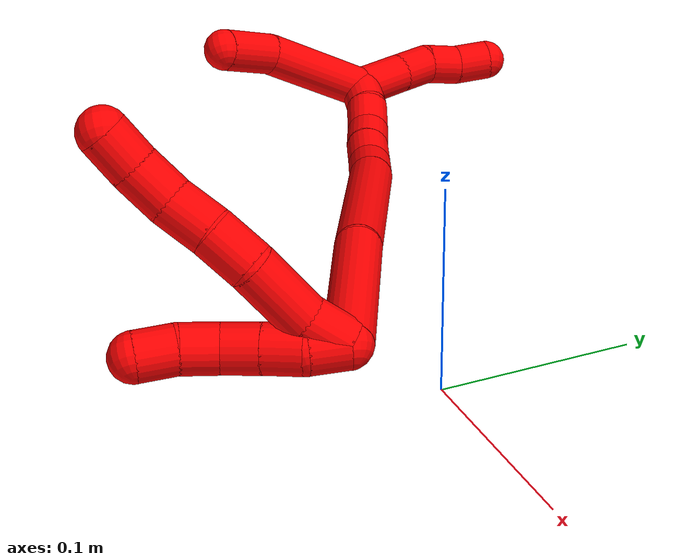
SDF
<sdf version="1.7">
 <world name="default">
  <model name="photoneo_s_sensor">
   <static>1</static>
   <pose>0 0 2 1.57079 1.57079 3.14159</pose>
   <link name="link">
    <inertial><mass>0.1</mass></inertial>
    <sensor name="sensor" type="depth">
     <update_rate>30</update_rate>
     <camera>
      <horizontal_fov>1.22</horizontal_fov>
      <image><width>1920</width><height>1200</height><format>B8G8R8</format></image>
      <clip><near>0.1</near><far>4</far></clip>
      <depth_camera><output>points</output></depth_camera>
     </camera>
     <plugin name="camera_plugin" filename="libgazebo_ros_depth_camera.so">
      <baseline>0.2</baseline>
      <alwaysOn>1</alwaysOn>
      <updateRate>0.0</updateRate>
      <cameraName>camera_ir</cameraName>
      <imageTopicName>/camera/color/image_raw</imageTopicName>
      <cameraInfoTopicName>/camera/color/camera_info</cameraInfoTopicName>
      <depthImageTopicName>/camera/depth/image_raw</depthImageTopicName>
      <depthImageCameraInfoTopicName>/camera/depth/camera_info</depthImageCameraInfoTopicName>
      <pointCloudTopicName>/camera/depth/points</pointCloudTopicName>
      <frameName>fr_optical</frameName>
      <pointCloudCutoff>0.1</pointCloudCutoff>
      <pointCloudCutoffMax>2.0</pointCloudCutoffMax>
      <distortionK1>0</distortionK1>
      <distortionK2>0</distortionK2>
      <distortionK3>0</distortionK3>
      <distortionT1>0</distortionT1>
      <distortionT2>0</distortionT2>
      <CxPrime>0</CxPrime>
      <Cx>0</Cx>
      <Cy>0</Cy>
      <focalLength>0</focalLength>
      <hackBaseline>0</hackBaseline>
     </plugin>
    </sensor>
   </link>
  </model>
  <model name="bin">
   <static>1</static>
   <link name="bottom">
    <collision name="collision-bottom">
     <pose>0 0 -0.01 0 -0 0</pose>
     <geometry><box><size>0.8 0.6 0.02</size></box></geometry>
     <surface>
      <friction><ode><mu>100</mu><mu2>100</mu2></ode></friction>
      <contact><collide_bitmask>65535</collide_bitmask></contact>
     </surface>
    </collision>
   </link>
   <link name="west_wall">
    <collision name="collision-west_wall">
     <pose>-0.41 0 0.1 0 -0 0</pose>
     <geometry><box><size>0.02 0.6 0.2</size></box></geometry>
     <surface>
      <friction><ode><mu>100</mu><mu2>100</mu2></ode></friction>
      <contact><collide_bitmask>65535</collide_bitmask></contact>
     </surface>
    </collision>
   </link>
   <link name="east_wall">
    <collision name="collision-east_wall">
     <pose>0.41 0 0.1 0 -0 0</pose>
     <geometry><box><size>0.02 0.6 0.2</size></box></geometry>
     <surface>
      <friction><ode><mu>100</mu><mu2>100</mu2></ode></friction>
      <contact><collide_bitmask>65535</collide_bitmask></contact>
     </surface>
    </collision>
   </link>
   <link name="south_wall">
    <collision name="collision-south_wall">
     <pose>0 -0.31 0.1 0 -0 0</pose>
     <geometry><box><size>0.8 0.02 0.2</size></box></geometry>
     <surface>
      <friction><ode><mu>100</mu><mu2>100</mu2></ode></friction>
      <contact><collide_bitmask>65535</collide_bitmask></contact>
     </surface>
    </collision>
   </link>
   <link name="north_wall">
    <collision name="collision-north_wall">
     <pose>0 0.31 0.1 0 -0 0</pose>
     <geometry><box><size>0.8 0.02 0.2</size></box></geometry>
     <surface>
      <friction><ode><mu>100</mu><mu2>100</mu2></ode></friction>
      <contact><collide_bitmask>65535</collide_bitmask></contact>
     </surface>
    </collision>
   </link>
  </model>
  <model name="2">
   <static>0</static>
   <link name="2">
    <collision name="collision-cylinder-e_1_2_8">
     <pose>0.003023 -0.009163 0.006567 0.948928 0.262021 0.135142</pose>
     <geometry><cylinder><radius>0.0125</radius><length>0.023344</length></cylinder></geometry>
     <surface>
      <friction><ode><mu>1.16</mu><mu2>1.16</mu2><slip1>0</slip1><slip2>0</slip2></ode></friction>
      <contact><ode><kp>1e+06</kp><kd>1</kd><max_vel>0</max_vel><min_depth>0.001</min_depth></ode></contact>
     </surface>
    </collision>
    <visual name="visual-cylinder-e_1_2_8">
     <pose>0.003023 -0.009163 0.006567 0.948928 0.262021 0.135142</pose>
     <geometry><cylinder><radius>0.0125</radius><length>0.023344</length></cylinder></geometry>
     <material><ambient>1 0 0 1</ambient></material>
    </visual>
    <collision name="collision-cylinder-e_2_8_9">
     <pose>0.01501 -0.029437 0.024292 0.783343 0.51749 0.217765</pose>
     <geometry><cylinder><radius>0.0125</radius><length>0.036238</length></cylinder></geometry>
     <surface>
      <friction><ode><mu>1.16</mu><mu2>1.16</mu2><slip1>0</slip1><slip2>0</slip2></ode></friction>
      <contact><ode><kp>1e+06</kp><kd>1</kd><max_vel>0</max_vel><min_depth>0.001</min_depth></ode></contact>
     </surface>
    </collision>
    <visual name="visual-cylinder-e_2_8_9">
     <pose>0.01501 -0.029437 0.024292 0.783343 0.51749 0.217765</pose>
     <geometry><cylinder><radius>0.0125</radius><length>0.036238</length></cylinder></geometry>
     <material><ambient>1 0 0 1</ambient></material>
    </visual>
    <collision name="collision-cylinder-e_3_9_10">
     <pose>0.026947 -0.048243 0.043983 0.733738 0.253192 0.097738</pose>
     <geometry><cylinder><radius>0.0125</radius><length>0.023738</length></cylinder></geometry>
     <surface>
      <friction><ode><mu>1.16</mu><mu2>1.16</mu2><slip1>0</slip1><slip2>0</slip2></ode></friction>
      <contact><ode><kp>1e+06</kp><kd>1</kd><max_vel>0</max_vel><min_depth>0.001</min_depth></ode></contact>
     </surface>
    </collision>
    <visual name="visual-cylinder-e_3_9_10">
     <pose>0.026947 -0.048243 0.043983 0.733738 0.253192 0.097738</pose>
     <geometry><cylinder><radius>0.0125</radius><length>0.023738</length></cylinder></geometry>
     <material><ambient>1 0 0 1</ambient></material>
    </visual>
    <collision name="collision-cylinder-e_4_10_11">
     <pose>0.031298 -0.063856 0.060867 0.758812 0.119209 0.047579</pose>
     <geometry><cylinder><radius>0.0125</radius><length>0.023179</length></cylinder></geometry>
     <surface>
      <friction><ode><mu>1.16</mu><mu2>1.16</mu2><slip1>0</slip1><slip2>0</slip2></ode></friction>
      <contact><ode><kp>1e+06</kp><kd>1</kd><max_vel>0</max_vel><min_depth>0.001</min_depth></ode></contact>
     </surface>
    </collision>
    <visual name="visual-cylinder-e_4_10_11">
     <pose>0.031298 -0.063856 0.060867 0.758812 0.119209 0.047579</pose>
     <geometry><cylinder><radius>0.0125</radius><length>0.023179</length></cylinder></geometry>
     <material><ambient>1 0 0 1</ambient></material>
    </visual>
    <collision name="collision-cylinder-e_5_11_12">
     <pose>0.036681 -0.078863 0.077035 0.736623 0.36272 0.141301</pose>
     <geometry><cylinder><radius>0.0125</radius><length>0.022575</length></cylinder></geometry>
     <surface>
      <friction><ode><mu>1.16</mu><mu2>1.16</mu2><slip1>0</slip1><slip2>0</slip2></ode></friction>
      <contact><ode><kp>1e+06</kp><kd>1</kd><max_vel>0</max_vel><min_depth>0.001</min_depth></ode></contact>
     </surface>
    </collision>
    <visual name="visual-cylinder-e_5_11_12">
     <pose>0.036681 -0.078863 0.077035 0.736623 0.36272 0.141301</pose>
     <geometry><cylinder><radius>0.0125</radius><length>0.022575</length></cylinder></geometry>
     <material><ambient>1 0 0 1</ambient></material>
    </visual>
    <collision name="collision-cylinder-e_6_12_6">
     <pose>0.045793 -0.091873 0.091806 0.70522 0.509822 0.191196</pose>
     <geometry><cylinder><radius>0.0125</radius><length>0.020926</length></cylinder></geometry>
     <surface>
      <friction><ode><mu>1.16</mu><mu2>1.16</mu2><slip1>0</slip1><slip2>0</slip2></ode></friction>
      <contact><ode><kp>1e+06</kp><kd>1</kd><max_vel>0</max_vel><min_depth>0.001</min_depth></ode></contact>
     </surface>
    </collision>
    <visual name="visual-cylinder-e_6_12_6">
     <pose>0.045793 -0.091873 0.091806 0.70522 0.509822 0.191196</pose>
     <geometry><cylinder><radius>0.0125</radius><length>0.020926</length></cylinder></geometry>
     <material><ambient>1 0 0 1</ambient></material>
    </visual>
    <collision name="collision-cylinder-e_1_2_13">
     <pose>-0.000358 -0.009987 0.000367 1.53408 -0.035843 -0.034551</pose>
     <geometry><cylinder><radius>0.0125</radius><length>0.02</length></cylinder></geometry>
     <surface>
      <friction><ode><mu>1.16</mu><mu2>1.16</mu2><slip1>0</slip1><slip2>0</slip2></ode></friction>
      <contact><ode><kp>1e+06</kp><kd>1</kd><max_vel>0</max_vel><min_depth>0.001</min_depth></ode></contact>
     </surface>
    </collision>
    <visual name="visual-cylinder-e_1_2_13">
     <pose>-0.000358 -0.009987 0.000367 1.53408 -0.035843 -0.034551</pose>
     <geometry><cylinder><radius>0.0125</radius><length>0.02</length></cylinder></geometry>
     <material><ambient>1 0 0 1</ambient></material>
    </visual>
    <collision name="collision-cylinder-e_2_13_14">
     <pose>-0.002831 -0.029331 0.003555 1.27794 -0.213063 -0.158562</pose>
     <geometry><cylinder><radius>0.0125</radius><length>0.02</length></cylinder></geometry>
     <surface>
      <friction><ode><mu>1.16</mu><mu2>1.16</mu2><slip1>0</slip1><slip2>0</slip2></ode></friction>
      <contact><ode><kp>1e+06</kp><kd>1</kd><max_vel>0</max_vel><min_depth>0.001</min_depth></ode></contact>
     </surface>
    </collision>
    <visual name="visual-cylinder-e_2_13_14">
     <pose>-0.002831 -0.029331 0.003555 1.27794 -0.213063 -0.158562</pose>
     <geometry><cylinder><radius>0.0125</radius><length>0.02</length></cylinder></geometry>
     <material><ambient>1 0 0 1</ambient></material>
    </visual>
    <collision name="collision-cylinder-e_3_14_15">
     <pose>-0.007098 -0.048128 0.008881 1.3115 -0.216894 -0.167128</pose>
     <geometry><cylinder><radius>0.0125</radius><length>0.02</length></cylinder></geometry>
     <surface>
      <friction><ode><mu>1.16</mu><mu2>1.16</mu2><slip1>0</slip1><slip2>0</slip2></ode></friction>
      <contact><ode><kp>1e+06</kp><kd>1</kd><max_vel>0</max_vel><min_depth>0.001</min_depth></ode></contact>
     </surface>
    </collision>
    <visual name="visual-cylinder-e_3_14_15">
     <pose>-0.007098 -0.048128 0.008881 1.3115 -0.216894 -0.167128</pose>
     <geometry><cylinder><radius>0.0125</radius><length>0.02</length></cylinder></geometry>
     <material><ambient>1 0 0 1</ambient></material>
    </visual>
    <collision name="collision-cylinder-e_4_15_16">
     <pose>-0.008509 -0.067466 0.012596 1.44909 0.074129 0.065621</pose>
     <geometry><cylinder><radius>0.0125</radius><length>0.02</length></cylinder></geometry>
     <surface>
      <friction><ode><mu>1.16</mu><mu2>1.16</mu2><slip1>0</slip1><slip2>0</slip2></ode></friction>
      <contact><ode><kp>1e+06</kp><kd>1</kd><max_vel>0</max_vel><min_depth>0.001</min_depth></ode></contact>
     </surface>
    </collision>
    <visual name="visual-cylinder-e_4_15_16">
     <pose>-0.008509 -0.067466 0.012596 1.44909 0.074129 0.065621</pose>
     <geometry><cylinder><radius>0.0125</radius><length>0.02</length></cylinder></geometry>
     <material><ambient>1 0 0 1</ambient></material>
    </visual>
    <collision name="collision-cylinder-e_5_16_5">
     <pose>-0.007945 -0.087361 0.013598 1.5916 -0.017665 -0.018037</pose>
     <geometry><cylinder><radius>0.0125</radius><length>0.02</length></cylinder></geometry>
     <surface>
      <friction><ode><mu>1.16</mu><mu2>1.16</mu2><slip1>0</slip1><slip2>0</slip2></ode></friction>
      <contact><ode><kp>1e+06</kp><kd>1</kd><max_vel>0</max_vel><min_depth>0.001</min_depth></ode></contact>
     </surface>
    </collision>
    <visual name="visual-cylinder-e_5_16_5">
     <pose>-0.007945 -0.087361 0.013598 1.5916 -0.017665 -0.018037</pose>
     <geometry><cylinder><radius>0.0125</radius><length>0.02</length></cylinder></geometry>
     <material><ambient>1 0 0 1</ambient></material>
    </visual>
    <collision name="collision-cylinder-e_1_2_17">
     <pose>-0.021671 0.012801 0.034085 -0.359252 -0.536877 0.099816</pose>
     <geometry><cylinder><radius>0.0125</radius><length>0.084741</length></cylinder></geometry>
     <surface>
      <friction><ode><mu>1.16</mu><mu2>1.16</mu2><slip1>0</slip1><slip2>0</slip2></ode></friction>
      <contact><ode><kp>1e+06</kp><kd>1</kd><max_vel>0</max_vel><min_depth>0.001</min_depth></ode></contact>
     </surface>
    </collision>
    <visual name="visual-cylinder-e_1_2_17">
     <pose>-0.021671 0.012801 0.034085 -0.359252 -0.536877 0.099816</pose>
     <geometry><cylinder><radius>0.0125</radius><length>0.084741</length></cylinder></geometry>
     <material><ambient>1 0 0 1</ambient></material>
    </visual>
    <collision name="collision-cylinder-e_2_17_18">
     <pose>-0.080066 0.042716 0.106775 -0.417292 -0.715801 0.158046</pose>
     <geometry><cylinder><radius>0.0125</radius><length>0.111927</length></cylinder></geometry>
     <surface>
      <friction><ode><mu>1.16</mu><mu2>1.16</mu2><slip1>0</slip1><slip2>0</slip2></ode></friction>
      <contact><ode><kp>1e+06</kp><kd>1</kd><max_vel>0</max_vel><min_depth>0.001</min_depth></ode></contact>
     </surface>
    </collision>
    <visual name="visual-cylinder-e_2_17_18">
     <pose>-0.080066 0.042716 0.106775 -0.417292 -0.715801 0.158046</pose>
     <geometry><cylinder><radius>0.0125</radius><length>0.111927</length></cylinder></geometry>
     <material><ambient>1 0 0 1</ambient></material>
    </visual>
    <collision name="collision-cylinder-e_3_18_19">
     <pose>-0.123991 0.062225 0.153308 -0.293321 -0.7157 0.110369</pose>
     <geometry><cylinder><radius>0.0125</radius><length>0.02195</length></cylinder></geometry>
     <surface>
      <friction><ode><mu>1.16</mu><mu2>1.16</mu2><slip1>0</slip1><slip2>0</slip2></ode></friction>
      <contact><ode><kp>1e+06</kp><kd>1</kd><max_vel>0</max_vel><min_depth>0.001</min_depth></ode></contact>
     </surface>
    </collision>
    <visual name="visual-cylinder-e_3_18_19">
     <pose>-0.123991 0.062225 0.153308 -0.293321 -0.7157 0.110369</pose>
     <geometry><cylinder><radius>0.0125</radius><length>0.02195</length></cylinder></geometry>
     <material><ambient>1 0 0 1</ambient></material>
    </visual>
    <collision name="collision-cylinder-e_4_19_20">
     <pose>-0.136193 0.066599 0.170008 -0.221993 -0.507512 0.057794</pose>
     <geometry><cylinder><radius>0.0125</radius><length>0.020578</length></cylinder></geometry>
     <surface>
      <friction><ode><mu>1.16</mu><mu2>1.16</mu2><slip1>0</slip1><slip2>0</slip2></ode></friction>
      <contact><ode><kp>1e+06</kp><kd>1</kd><max_vel>0</max_vel><min_depth>0.001</min_depth></ode></contact>
     </surface>
    </collision>
    <visual name="visual-cylinder-e_4_19_20">
     <pose>-0.136193 0.066599 0.170008 -0.221993 -0.507512 0.057794</pose>
     <geometry><cylinder><radius>0.0125</radius><length>0.020578</length></cylinder></geometry>
     <material><ambient>1 0 0 1</ambient></material>
    </visual>
    <collision name="collision-cylinder-e_5_20_21">
     <pose>-0.146337 0.07134 0.187023 -0.323196 -0.534201 0.089158</pose>
     <geometry><cylinder><radius>0.0125</radius><length>0.020204</length></cylinder></geometry>
     <surface>
      <friction><ode><mu>1.16</mu><mu2>1.16</mu2><slip1>0</slip1><slip2>0</slip2></ode></friction>
      <contact><ode><kp>1e+06</kp><kd>1</kd><max_vel>0</max_vel><min_depth>0.001</min_depth></ode></contact>
     </surface>
    </collision>
    <visual name="visual-cylinder-e_5_20_21">
     <pose>-0.146337 0.07134 0.187023 -0.323196 -0.534201 0.089158</pose>
     <geometry><cylinder><radius>0.0125</radius><length>0.020204</length></cylinder></geometry>
     <material><ambient>1 0 0 1</ambient></material>
    </visual>
    <collision name="collision-cylinder-e_6_21_22">
     <pose>-0.153692 0.076294 0.205062 -0.220157 -0.216907 0.024067</pose>
     <geometry><cylinder><radius>0.0125</radius><length>0.020555</length></cylinder></geometry>
     <surface>
      <friction><ode><mu>1.16</mu><mu2>1.16</mu2><slip1>0</slip1><slip2>0</slip2></ode></friction>
      <contact><ode><kp>1e+06</kp><kd>1</kd><max_vel>0</max_vel><min_depth>0.001</min_depth></ode></contact>
     </surface>
    </collision>
    <visual name="visual-cylinder-e_6_21_22">
     <pose>-0.153692 0.076294 0.205062 -0.220157 -0.216907 0.024067</pose>
     <geometry><cylinder><radius>0.0125</radius><length>0.020555</length></cylinder></geometry>
     <material><ambient>1 0 0 1</ambient></material>
    </visual>
    <collision name="collision-cylinder-e_7_22_1">
     <pose>-0.159492 0.078864 0.224207 -0.040506 -0.366123 0.0075</pose>
     <geometry><cylinder><radius>0.0125</radius><length>0.020045</length></cylinder></geometry>
     <surface>
      <friction><ode><mu>1.16</mu><mu2>1.16</mu2><slip1>0</slip1><slip2>0</slip2></ode></friction>
      <contact><ode><kp>1e+06</kp><kd>1</kd><max_vel>0</max_vel><min_depth>0.001</min_depth></ode></contact>
     </surface>
    </collision>
    <visual name="visual-cylinder-e_7_22_1">
     <pose>-0.159492 0.078864 0.224207 -0.040506 -0.366123 0.0075</pose>
     <geometry><cylinder><radius>0.0125</radius><length>0.020045</length></cylinder></geometry>
     <material><ambient>1 0 0 1</ambient></material>
    </visual>
    <collision name="collision-cylinder-e_1_1_23">
     <pose>-0.149181 0.050075 0.241171 1.31549 0.432015 0.335826</pose>
     <geometry><cylinder><radius>0.0125</radius><length>0.066391</length></cylinder></geometry>
     <surface>
      <friction><ode><mu>1.16</mu><mu2>1.16</mu2><slip1>0</slip1><slip2>0</slip2></ode></friction>
      <contact><ode><kp>1e+06</kp><kd>1</kd><max_vel>0</max_vel><min_depth>0.001</min_depth></ode></contact>
     </surface>
    </collision>
    <visual name="visual-cylinder-e_1_1_23">
     <pose>-0.149181 0.050075 0.241171 1.31549 0.432015 0.335826</pose>
     <geometry><cylinder><radius>0.0125</radius><length>0.066391</length></cylinder></geometry>
     <material><ambient>1 0 0 1</ambient></material>
    </visual>
    <collision name="collision-cylinder-e_2_23_4">
     <pose>-0.127313 0.006226 0.24695 1.69506 0.494098 0.556505</pose>
     <geometry><cylinder><radius>0.0125</radius><length>0.033609</length></cylinder></geometry>
     <surface>
      <friction><ode><mu>1.16</mu><mu2>1.16</mu2><slip1>0</slip1><slip2>0</slip2></ode></friction>
      <contact><ode><kp>1e+06</kp><kd>1</kd><max_vel>0</max_vel><min_depth>0.001</min_depth></ode></contact>
     </surface>
    </collision>
    <visual name="visual-cylinder-e_2_23_4">
     <pose>-0.127313 0.006226 0.24695 1.69506 0.494098 0.556505</pose>
     <geometry><cylinder><radius>0.0125</radius><length>0.033609</length></cylinder></geometry>
     <material><ambient>1 0 0 1</ambient></material>
    </visual>
    <collision name="collision-cylinder-e_1_1_24">
     <pose>-0.168003 0.094311 0.240031 -1.16503 -0.291641 0.192897</pose>
     <geometry><cylinder><radius>0.0125</radius><length>0.034244</length></cylinder></geometry>
     <surface>
      <friction><ode><mu>1.16</mu><mu2>1.16</mu2><slip1>0</slip1><slip2>0</slip2></ode></friction>
      <contact><ode><kp>1e+06</kp><kd>1</kd><max_vel>0</max_vel><min_depth>0.001</min_depth></ode></contact>
     </surface>
    </collision>
    <visual name="visual-cylinder-e_1_1_24">
     <pose>-0.168003 0.094311 0.240031 -1.16503 -0.291641 0.192897</pose>
     <geometry><cylinder><radius>0.0125</radius><length>0.034244</length></cylinder></geometry>
     <material><ambient>1 0 0 1</ambient></material>
    </visual>
    <collision name="collision-cylinder-e_2_24_25">
     <pose>-0.174921 0.119872 0.25015 -1.23634 -0.177655 0.126503</pose>
     <geometry><cylinder><radius>0.0125</radius><length>0.022573</length></cylinder></geometry>
     <surface>
      <friction><ode><mu>1.16</mu><mu2>1.16</mu2><slip1>0</slip1><slip2>0</slip2></ode></friction>
      <contact><ode><kp>1e+06</kp><kd>1</kd><max_vel>0</max_vel><min_depth>0.001</min_depth></ode></contact>
     </surface>
    </collision>
    <visual name="visual-cylinder-e_2_24_25">
     <pose>-0.174921 0.119872 0.25015 -1.23634 -0.177655 0.126503</pose>
     <geometry><cylinder><radius>0.0125</radius><length>0.022573</length></cylinder></geometry>
     <material><ambient>1 0 0 1</ambient></material>
    </visual>
    <collision name="collision-cylinder-e_3_25_26">
     <pose>-0.179508 0.140922 0.253636 -1.58601 -0.240777 0.244432</pose>
     <geometry><cylinder><radius>0.0125</radius><length>0.021745</length></cylinder></geometry>
     <surface>
      <friction><ode><mu>1.16</mu><mu2>1.16</mu2><slip1>0</slip1><slip2>0</slip2></ode></friction>
      <contact><ode><kp>1e+06</kp><kd>1</kd><max_vel>0</max_vel><min_depth>0.001</min_depth></ode></contact>
     </surface>
    </collision>
    <visual name="visual-cylinder-e_3_25_26">
     <pose>-0.179508 0.140922 0.253636 -1.58601 -0.240777 0.244432</pose>
     <geometry><cylinder><radius>0.0125</radius><length>0.021745</length></cylinder></geometry>
     <material><ambient>1 0 0 1</ambient></material>
    </visual>
    <collision name="collision-cylinder-e_4_26_3">
     <pose>-0.181843 0.162187 0.253919 -1.52939 0.024 -0.023026</pose>
     <geometry><cylinder><radius>0.0125</radius><length>0.021438</length></cylinder></geometry>
     <surface>
      <friction><ode><mu>1.16</mu><mu2>1.16</mu2><slip1>0</slip1><slip2>0</slip2></ode></friction>
      <contact><ode><kp>1e+06</kp><kd>1</kd><max_vel>0</max_vel><min_depth>0.001</min_depth></ode></contact>
     </surface>
    </collision>
    <visual name="visual-cylinder-e_4_26_3">
     <pose>-0.181843 0.162187 0.253919 -1.52939 0.024 -0.023026</pose>
     <geometry><cylinder><radius>0.0125</radius><length>0.021438</length></cylinder></geometry>
     <material><ambient>1 0 0 1</ambient></material>
    </visual>
    <collision name="collision-sphere-3">
     <pose>-0.181586 0.172894 0.254363 0 -0 0</pose>
     <geometry><sphere><radius>0.0125</radius></sphere></geometry>
     <surface>
      <friction><ode><mu>1.16</mu><mu2>1.16</mu2><slip1>0</slip1><slip2>0</slip2></ode></friction>
      <contact><ode><kp>1e+06</kp><kd>1</kd><max_vel>0</max_vel><min_depth>0.001</min_depth></ode></contact>
     </surface>
    </collision>
    <visual name="visual-sphere-3">
     <pose>-0.181586 0.172894 0.254363 0 -0 0</pose>
     <geometry><sphere><radius>0.0125</radius></sphere></geometry>
     <material><ambient>1 0 0 1</ambient></material>
    </visual>
    <collision name="collision-sphere-26">
     <pose>-0.182101 0.15148 0.253476 0 -0 0</pose>
     <geometry><sphere><radius>0.0125</radius></sphere></geometry>
     <surface>
      <friction><ode><mu>1.16</mu><mu2>1.16</mu2><slip1>0</slip1><slip2>0</slip2></ode></friction>
      <contact><ode><kp>1e+06</kp><kd>1</kd><max_vel>0</max_vel><min_depth>0.001</min_depth></ode></contact>
     </surface>
    </collision>
    <visual name="visual-sphere-26">
     <pose>-0.182101 0.15148 0.253476 0 -0 0</pose>
     <geometry><sphere><radius>0.0125</radius></sphere></geometry>
     <material><ambient>1 0 0 1</ambient></material>
    </visual>
    <collision name="collision-sphere-25">
     <pose>-0.176915 0.130365 0.253797 0 -0 0</pose>
     <geometry><sphere><radius>0.0125</radius></sphere></geometry>
     <surface>
      <friction><ode><mu>1.16</mu><mu2>1.16</mu2><slip1>0</slip1><slip2>0</slip2></ode></friction>
      <contact><ode><kp>1e+06</kp><kd>1</kd><max_vel>0</max_vel><min_depth>0.001</min_depth></ode></contact>
     </surface>
    </collision>
    <visual name="visual-sphere-25">
     <pose>-0.176915 0.130365 0.253797 0 -0 0</pose>
     <geometry><sphere><radius>0.0125</radius></sphere></geometry>
     <material><ambient>1 0 0 1</ambient></material>
    </visual>
    <collision name="collision-sphere-24">
     <pose>-0.172926 0.109378 0.246504 0 -0 0</pose>
     <geometry><sphere><radius>0.0125</radius></sphere></geometry>
     <surface>
      <friction><ode><mu>1.16</mu><mu2>1.16</mu2><slip1>0</slip1><slip2>0</slip2></ode></friction>
      <contact><ode><kp>1e+06</kp><kd>1</kd><max_vel>0</max_vel><min_depth>0.001</min_depth></ode></contact>
     </surface>
    </collision>
    <visual name="visual-sphere-24">
     <pose>-0.172926 0.109378 0.246504 0 -0 0</pose>
     <geometry><sphere><radius>0.0125</radius></sphere></geometry>
     <material><ambient>1 0 0 1</ambient></material>
    </visual>
    <collision name="collision-sphere-4">
     <pose>-0.119344 -0.008455 0.245117 0 -0 0</pose>
     <geometry><sphere><radius>0.0125</radius></sphere></geometry>
     <surface>
      <friction><ode><mu>1.16</mu><mu2>1.16</mu2><slip1>0</slip1><slip2>0</slip2></ode></friction>
      <contact><ode><kp>1e+06</kp><kd>1</kd><max_vel>0</max_vel><min_depth>0.001</min_depth></ode></contact>
     </surface>
    </collision>
    <visual name="visual-sphere-4">
     <pose>-0.119344 -0.008455 0.245117 0 -0 0</pose>
     <geometry><sphere><radius>0.0125</radius></sphere></geometry>
     <material><ambient>1 0 0 1</ambient></material>
    </visual>
    <collision name="collision-sphere-23">
     <pose>-0.135282 0.020907 0.248784 0 -0 0</pose>
     <geometry><sphere><radius>0.0125</radius></sphere></geometry>
     <surface>
      <friction><ode><mu>1.16</mu><mu2>1.16</mu2><slip1>0</slip1><slip2>0</slip2></ode></friction>
      <contact><ode><kp>1e+06</kp><kd>1</kd><max_vel>0</max_vel><min_depth>0.001</min_depth></ode></contact>
     </surface>
    </collision>
    <visual name="visual-sphere-23">
     <pose>-0.135282 0.020907 0.248784 0 -0 0</pose>
     <geometry><sphere><radius>0.0125</radius></sphere></geometry>
     <material><ambient>1 0 0 1</ambient></material>
    </visual>
    <collision name="collision-sphere-1">
     <pose>-0.16308 0.079243 0.233558 0 -0 0</pose>
     <geometry><sphere><radius>0.0125</radius></sphere></geometry>
     <surface>
      <friction><ode><mu>1.16</mu><mu2>1.16</mu2><slip1>0</slip1><slip2>0</slip2></ode></friction>
      <contact><ode><kp>1e+06</kp><kd>1</kd><max_vel>0</max_vel><min_depth>0.001</min_depth></ode></contact>
     </surface>
    </collision>
    <visual name="visual-sphere-1">
     <pose>-0.16308 0.079243 0.233558 0 -0 0</pose>
     <geometry><sphere><radius>0.0125</radius></sphere></geometry>
     <material><ambient>1 0 0 1</ambient></material>
    </visual>
    <collision name="collision-sphere-22">
     <pose>-0.155904 0.078485 0.214856 0 -0 0</pose>
     <geometry><sphere><radius>0.0125</radius></sphere></geometry>
     <surface>
      <friction><ode><mu>1.16</mu><mu2>1.16</mu2><slip1>0</slip1><slip2>0</slip2></ode></friction>
      <contact><ode><kp>1e+06</kp><kd>1</kd><max_vel>0</max_vel><min_depth>0.001</min_depth></ode></contact>
     </surface>
    </collision>
    <visual name="visual-sphere-22">
     <pose>-0.155904 0.078485 0.214856 0 -0 0</pose>
     <geometry><sphere><radius>0.0125</radius></sphere></geometry>
     <material><ambient>1 0 0 1</ambient></material>
    </visual>
    <collision name="collision-sphere-21">
     <pose>-0.151481 0.074102 0.195268 0 -0 0</pose>
     <geometry><sphere><radius>0.0125</radius></sphere></geometry>
     <surface>
      <friction><ode><mu>1.16</mu><mu2>1.16</mu2><slip1>0</slip1><slip2>0</slip2></ode></friction>
      <contact><ode><kp>1e+06</kp><kd>1</kd><max_vel>0</max_vel><min_depth>0.001</min_depth></ode></contact>
     </surface>
    </collision>
    <visual name="visual-sphere-21">
     <pose>-0.151481 0.074102 0.195268 0 -0 0</pose>
     <geometry><sphere><radius>0.0125</radius></sphere></geometry>
     <material><ambient>1 0 0 1</ambient></material>
    </visual>
    <collision name="collision-sphere-12">
     <pose>0.040687 -0.085953 0.084852 0 -0 0</pose>
     <geometry><sphere><radius>0.0125</radius></sphere></geometry>
     <surface>
      <friction><ode><mu>1.16</mu><mu2>1.16</mu2><slip1>0</slip1><slip2>0</slip2></ode></friction>
      <contact><ode><kp>1e+06</kp><kd>1</kd><max_vel>0</max_vel><min_depth>0.001</min_depth></ode></contact>
     </surface>
    </collision>
    <visual name="visual-sphere-12">
     <pose>0.040687 -0.085953 0.084852 0 -0 0</pose>
     <geometry><sphere><radius>0.0125</radius></sphere></geometry>
     <material><ambient>1 0 0 1</ambient></material>
    </visual>
    <collision name="collision-sphere-11">
     <pose>0.032676 -0.071774 0.069217 0 -0 0</pose>
     <geometry><sphere><radius>0.0125</radius></sphere></geometry>
     <surface>
      <friction><ode><mu>1.16</mu><mu2>1.16</mu2><slip1>0</slip1><slip2>0</slip2></ode></friction>
      <contact><ode><kp>1e+06</kp><kd>1</kd><max_vel>0</max_vel><min_depth>0.001</min_depth></ode></contact>
     </surface>
    </collision>
    <visual name="visual-sphere-11">
     <pose>0.032676 -0.071774 0.069217 0 -0 0</pose>
     <geometry><sphere><radius>0.0125</radius></sphere></geometry>
     <material><ambient>1 0 0 1</ambient></material>
    </visual>
    <collision name="collision-sphere-10">
     <pose>0.02992 -0.055938 0.052517 0 -0 0</pose>
     <geometry><sphere><radius>0.0125</radius></sphere></geometry>
     <surface>
      <friction><ode><mu>1.16</mu><mu2>1.16</mu2><slip1>0</slip1><slip2>0</slip2></ode></friction>
      <contact><ode><kp>1e+06</kp><kd>1</kd><max_vel>0</max_vel><min_depth>0.001</min_depth></ode></contact>
     </surface>
    </collision>
    <visual name="visual-sphere-10">
     <pose>0.02992 -0.055938 0.052517 0 -0 0</pose>
     <geometry><sphere><radius>0.0125</radius></sphere></geometry>
     <material><ambient>1 0 0 1</ambient></material>
    </visual>
    <collision name="collision-sphere-9">
     <pose>0.023974 -0.040549 0.035449 0 -0 0</pose>
     <geometry><sphere><radius>0.0125</radius></sphere></geometry>
     <surface>
      <friction><ode><mu>1.16</mu><mu2>1.16</mu2><slip1>0</slip1><slip2>0</slip2></ode></friction>
      <contact><ode><kp>1e+06</kp><kd>1</kd><max_vel>0</max_vel><min_depth>0.001</min_depth></ode></contact>
     </surface>
    </collision>
    <visual name="visual-sphere-9">
     <pose>0.023974 -0.040549 0.035449 0 -0 0</pose>
     <geometry><sphere><radius>0.0125</radius></sphere></geometry>
     <material><ambient>1 0 0 1</ambient></material>
    </visual>
    <collision name="collision-sphere-2">
     <geometry><sphere><radius>0.0125</radius></sphere></geometry>
     <surface>
      <friction><ode><mu>1.16</mu><mu2>1.16</mu2><slip1>0</slip1><slip2>0</slip2></ode></friction>
      <contact><ode><kp>1e+06</kp><kd>1</kd><max_vel>0</max_vel><min_depth>0.001</min_depth></ode></contact>
     </surface>
    </collision>
    <visual name="visual-sphere-2">
     <geometry><sphere><radius>0.0125</radius></sphere></geometry>
     <material><ambient>1 0 0 1</ambient></material>
    </visual>
    <collision name="collision-sphere-19">
     <pose>-0.131193 0.064619 0.161236 0 -0 0</pose>
     <geometry><sphere><radius>0.0125</radius></sphere></geometry>
     <surface>
      <friction><ode><mu>1.16</mu><mu2>1.16</mu2><slip1>0</slip1><slip2>0</slip2></ode></friction>
      <contact><ode><kp>1e+06</kp><kd>1</kd><max_vel>0</max_vel><min_depth>0.001</min_depth></ode></contact>
     </surface>
    </collision>
    <visual name="visual-sphere-19">
     <pose>-0.131193 0.064619 0.161236 0 -0 0</pose>
     <geometry><sphere><radius>0.0125</radius></sphere></geometry>
     <material><ambient>1 0 0 1</ambient></material>
    </visual>
    <collision name="collision-sphere-8">
     <pose>0.006047 -0.018326 0.013135 0 -0 0</pose>
     <geometry><sphere><radius>0.0125</radius></sphere></geometry>
     <surface>
      <friction><ode><mu>1.16</mu><mu2>1.16</mu2><slip1>0</slip1><slip2>0</slip2></ode></friction>
      <contact><ode><kp>1e+06</kp><kd>1</kd><max_vel>0</max_vel><min_depth>0.001</min_depth></ode></contact>
     </surface>
    </collision>
    <visual name="visual-sphere-8">
     <pose>0.006047 -0.018326 0.013135 0 -0 0</pose>
     <geometry><sphere><radius>0.0125</radius></sphere></geometry>
     <material><ambient>1 0 0 1</ambient></material>
    </visual>
    <collision name="collision-sphere-6">
     <pose>0.050899 -0.097792 0.09876 0 -0 0</pose>
     <geometry><sphere><radius>0.0125</radius></sphere></geometry>
     <surface>
      <friction><ode><mu>1.16</mu><mu2>1.16</mu2><slip1>0</slip1><slip2>0</slip2></ode></friction>
      <contact><ode><kp>1e+06</kp><kd>1</kd><max_vel>0</max_vel><min_depth>0.001</min_depth></ode></contact>
     </surface>
    </collision>
    <visual name="visual-sphere-6">
     <pose>0.050899 -0.097792 0.09876 0 -0 0</pose>
     <geometry><sphere><radius>0.0125</radius></sphere></geometry>
     <material><ambient>1 0 0 1</ambient></material>
    </visual>
    <collision name="collision-sphere-13">
     <pose>-0.000717 -0.019974 0.000734 0 -0 0</pose>
     <geometry><sphere><radius>0.0125</radius></sphere></geometry>
     <surface>
      <friction><ode><mu>1.16</mu><mu2>1.16</mu2><slip1>0</slip1><slip2>0</slip2></ode></friction>
      <contact><ode><kp>1e+06</kp><kd>1</kd><max_vel>0</max_vel><min_depth>0.001</min_depth></ode></contact>
     </surface>
    </collision>
    <visual name="visual-sphere-13">
     <pose>-0.000717 -0.019974 0.000734 0 -0 0</pose>
     <geometry><sphere><radius>0.0125</radius></sphere></geometry>
     <material><ambient>1 0 0 1</ambient></material>
    </visual>
    <collision name="collision-sphere-14">
     <pose>-0.004946 -0.038689 0.006377 0 -0 0</pose>
     <geometry><sphere><radius>0.0125</radius></sphere></geometry>
     <surface>
      <friction><ode><mu>1.16</mu><mu2>1.16</mu2><slip1>0</slip1><slip2>0</slip2></ode></friction>
      <contact><ode><kp>1e+06</kp><kd>1</kd><max_vel>0</max_vel><min_depth>0.001</min_depth></ode></contact>
     </surface>
    </collision>
    <visual name="visual-sphere-14">
     <pose>-0.004946 -0.038689 0.006377 0 -0 0</pose>
     <geometry><sphere><radius>0.0125</radius></sphere></geometry>
     <material><ambient>1 0 0 1</ambient></material>
    </visual>
    <collision name="collision-sphere-15">
     <pose>-0.00925 -0.057568 0.011385 0 -0 0</pose>
     <geometry><sphere><radius>0.0125</radius></sphere></geometry>
     <surface>
      <friction><ode><mu>1.16</mu><mu2>1.16</mu2><slip1>0</slip1><slip2>0</slip2></ode></friction>
      <contact><ode><kp>1e+06</kp><kd>1</kd><max_vel>0</max_vel><min_depth>0.001</min_depth></ode></contact>
     </surface>
    </collision>
    <visual name="visual-sphere-15">
     <pose>-0.00925 -0.057568 0.011385 0 -0 0</pose>
     <geometry><sphere><radius>0.0125</radius></sphere></geometry>
     <material><ambient>1 0 0 1</ambient></material>
    </visual>
    <collision name="collision-sphere-16">
     <pose>-0.007769 -0.077365 0.013806 0 -0 0</pose>
     <geometry><sphere><radius>0.0125</radius></sphere></geometry>
     <surface>
      <friction><ode><mu>1.16</mu><mu2>1.16</mu2><slip1>0</slip1><slip2>0</slip2></ode></friction>
      <contact><ode><kp>1e+06</kp><kd>1</kd><max_vel>0</max_vel><min_depth>0.001</min_depth></ode></contact>
     </surface>
    </collision>
    <visual name="visual-sphere-16">
     <pose>-0.007769 -0.077365 0.013806 0 -0 0</pose>
     <geometry><sphere><radius>0.0125</radius></sphere></geometry>
     <material><ambient>1 0 0 1</ambient></material>
    </visual>
    <collision name="collision-sphere-5">
     <pose>-0.008122 -0.097358 0.01339 0 -0 0</pose>
     <geometry><sphere><radius>0.0125</radius></sphere></geometry>
     <surface>
      <friction><ode><mu>1.16</mu><mu2>1.16</mu2><slip1>0</slip1><slip2>0</slip2></ode></friction>
      <contact><ode><kp>1e+06</kp><kd>1</kd><max_vel>0</max_vel><min_depth>0.001</min_depth></ode></contact>
     </surface>
    </collision>
    <visual name="visual-sphere-5">
     <pose>-0.008122 -0.097358 0.01339 0 -0 0</pose>
     <geometry><sphere><radius>0.0125</radius></sphere></geometry>
     <material><ambient>1 0 0 1</ambient></material>
    </visual>
    <collision name="collision-sphere-17">
     <pose>-0.043341 0.025601 0.06817 0 -0 0</pose>
     <geometry><sphere><radius>0.0125</radius></sphere></geometry>
     <surface>
      <friction><ode><mu>1.16</mu><mu2>1.16</mu2><slip1>0</slip1><slip2>0</slip2></ode></friction>
      <contact><ode><kp>1e+06</kp><kd>1</kd><max_vel>0</max_vel><min_depth>0.001</min_depth></ode></contact>
     </surface>
    </collision>
    <visual name="visual-sphere-17">
     <pose>-0.043341 0.025601 0.06817 0 -0 0</pose>
     <geometry><sphere><radius>0.0125</radius></sphere></geometry>
     <material><ambient>1 0 0 1</ambient></material>
    </visual>
    <collision name="collision-sphere-18">
     <pose>-0.11679 0.05983 0.145379 0 -0 0</pose>
     <geometry><sphere><radius>0.0125</radius></sphere></geometry>
     <surface>
      <friction><ode><mu>1.16</mu><mu2>1.16</mu2><slip1>0</slip1><slip2>0</slip2></ode></friction>
      <contact><ode><kp>1e+06</kp><kd>1</kd><max_vel>0</max_vel><min_depth>0.001</min_depth></ode></contact>
     </surface>
    </collision>
    <visual name="visual-sphere-18">
     <pose>-0.11679 0.05983 0.145379 0 -0 0</pose>
     <geometry><sphere><radius>0.0125</radius></sphere></geometry>
     <material><ambient>1 0 0 1</ambient></material>
    </visual>
    <collision name="collision-sphere-20">
     <pose>-0.141194 0.068579 0.178779 0 -0 0</pose>
     <geometry><sphere><radius>0.0125</radius></sphere></geometry>
     <surface>
      <friction><ode><mu>1.16</mu><mu2>1.16</mu2><slip1>0</slip1><slip2>0</slip2></ode></friction>
      <contact><ode><kp>1e+06</kp><kd>1</kd><max_vel>0</max_vel><min_depth>0.001</min_depth></ode></contact>
     </surface>
    </collision>
    <visual name="visual-sphere-20">
     <pose>-0.141194 0.068579 0.178779 0 -0 0</pose>
     <geometry><sphere><radius>0.0125</radius></sphere></geometry>
     <material><ambient>1 0 0 1</ambient></material>
    </visual>
    <inertial>
     <pose>-0.07212 0.022332 0.121675 0 -0 0</pose>
     <mass>0.75</mass>
     <inertia>
      <ixx>0.000225</ixx>
      <ixy>0</ixy>
      <ixz>0</ixz>
      <iyy>0.000223</iyy>
      <iyz>0</iyz>
      <izz>0.000104</izz>
     </inertia>
    </inertial>
   </link>
   <pose>-0.033819 -0.031434 0.01366 0.050957 -0.902671 -0.203799</pose>
  </model>
 </world>
</sdf>
